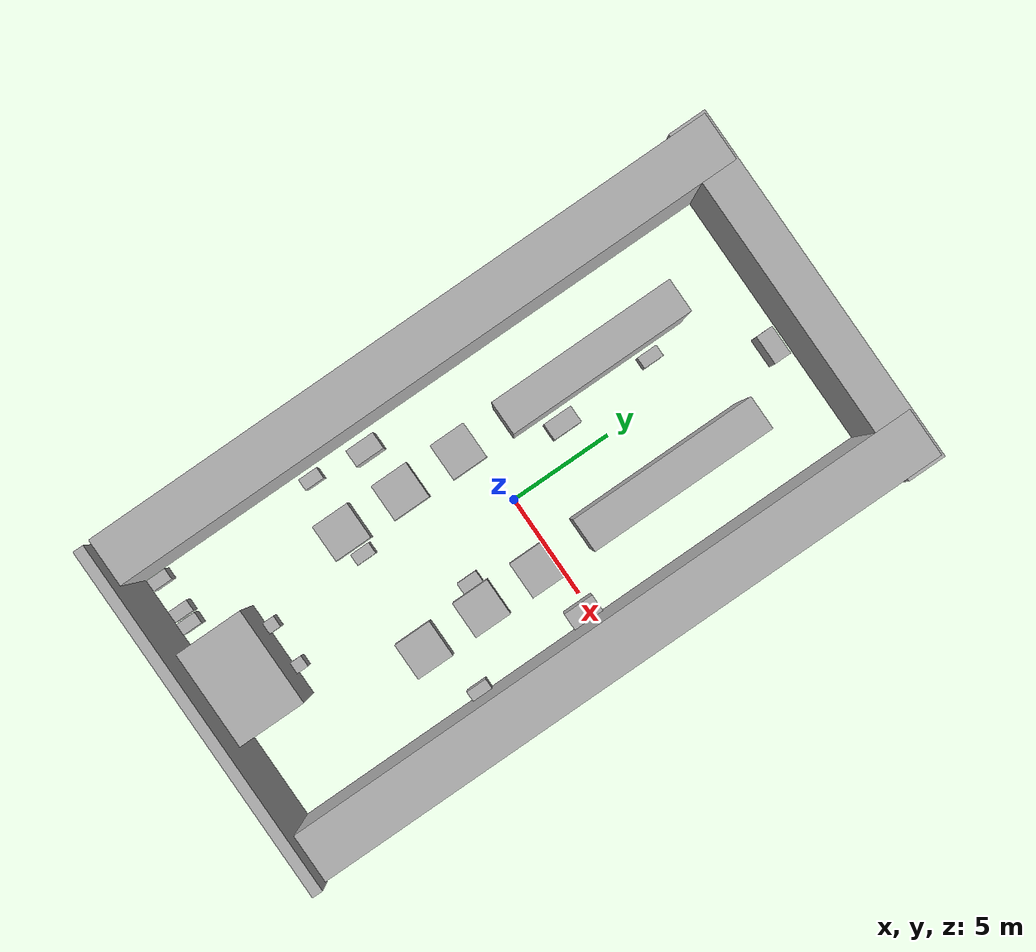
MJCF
<?xml version='1.0' encoding='utf-8'?>
<mujoco><worldbody><body name="Cube" pos="-3.106424331665039 -0.7924083471298218 0.42893028259277344"><geom type="box" size="0.9045870900154114 0.8800781965255737 0.40987831354141235" rgba="0.7 0.7 0.7 1" /></body><body name="Cube.001" pos="-3.106424331665039 -3.8511314392089844 0.4721049666404724"><geom type="box" size="0.9045870900154114 0.9166849255561829 0.42239314317703247" rgba="0.7 0.7 0.7 1" /></body><body name="Cube.002" pos="-1.5314898490905762 3.5964272022247314 0.6105251312255859"><geom type="box" size="0.41156280040740967 0.7077391743659973 0.5750482678413391" rgba="0.7 0.7 0.7 1" /></body><body name="Cube.003" pos="-3.030224323272705 5.969125747680664 1.7050747871398926"><geom type="box" size="0.8013579249382019 4.457285404205322 1.6607320308685303" rgba="0.7 0.7 0.7 1" /></body><body name="Cube.004" pos="-3.106424331665039 -6.949313163757324 0.4721049666404724"><geom type="box" size="0.9045870900154114 0.9166849255561829 0.42239314317703247" rgba="0.7 0.7 0.7 1" /></body><body name="Cube.005" pos="-1.5314898490905762 3.5964272022247314 0.6105251312255859"><geom type="box" size="0.41156280040740967 0.7077391743659973 0.5750482678413391" rgba="0.7 0.7 0.7 1" /></body><body name="Cube.006" pos="3.073184013366699 -3.8511314392089844 0.4721049666404724"><geom type="box" size="0.9045870900154114 0.9166849255561829 0.42239314317703247" rgba="0.7 0.7 0.7 1" /></body><body name="Cube.007" pos="3.073184013366699 -0.8387794494628906 0.4721049666404724"><geom type="box" size="0.9045870900154114 0.9166849255561829 0.42239314317703247" rgba="0.7 0.7 0.7 1" /></body><body name="Cube.008" pos="2.852900981903076 5.969125747680664 1.7050747871398926"><geom type="box" size="0.8013579249382019 4.457285404205322 1.6607320308685303" rgba="0.7 0.7 0.7 1" /></body><body name="Cube.009" pos="3.1343226432800293 -6.9332804679870605 0.4721049666404724"><geom type="box" size="0.9045870900154114 0.9166849255561829 0.42239314317703247" rgba="0.7 0.7 0.7 1" /></body><body name="Cube.010" pos="-1.8045388460159302 -6.743202209472656 0.3760989308357239"><geom type="box" size="0.2801657021045685 0.47854650020599365 0.33225446939468384" rgba="0.7 0.7 0.7 1" /></body><body name="Cube.011" pos="1.8613835573196411 -3.630113124847412 0.3760989308357239"><geom type="box" size="0.2801657021045685 0.5011858344078064 0.33225446939468384" rgba="0.7 0.7 0.7 1" /></body><body name="Cube.012" pos="-7.463425159454346 0.08257737755775452 1.7050747871398926"><geom type="box" size="1.1521168947219849 15.422843933105469 1.6607320308685303" rgba="0.7 0.7 0.7 1" /></body><body name="Cube.013" pos="7.349668979644775 0.08257737755775452 1.7050747871398926"><geom type="box" size="1.1521168947219849 15.422843933105469 1.6607320308685303" rgba="0.7 0.7 0.7 1" /></body><body name="Cube.014" pos="-5.774576187133789 -6.743202209472656 0.3760989308357239"><geom type="box" size="0.2801657021045685 0.47854650020599365 0.33225446939468384" rgba="0.7 0.7 0.7 1" /></body><body name="Cube.015" pos="-5.449253082275391 -4.062647819519043 0.6105251312255859"><geom type="box" size="0.41156280040740967 0.7077391743659973 0.5750482678413391" rgba="0.7 0.7 0.7 1" /></body><body name="Cube.016" pos="-0.05406169220805168 14.68520450592041 1.7050747871398926"><geom type="box" size="8.684910774230957 0.9048177003860474 1.6607320308685303" rgba="0.7 0.7 0.7 1" /></body><body name="Cube.017" pos="-1.743322491645813 8.411394119262695 0.3760989308357239"><geom type="box" size="0.2801657021045685 0.5011858344078064 0.33225446939468384" rgba="0.7 0.7 0.7 1" /></body><body name="Cube.018" pos="0.883574903011322 12.980020523071289 0.6105251312255859"><geom type="box" size="0.7099999785423279 0.4115000069141388 0.5750499963760376" rgba="0.7 0.7 0.7 1" /></body><body name="Cube.019" pos="5.692628860473633 -0.30861175060272217 0.6105251312255859"><geom type="box" size="0.41156280040740967 0.7387431263923645 0.5750482678413391" rgba="0.7 0.7 0.7 1" /></body><body name="Cube.020" pos="5.975793361663818 -5.958512783050537 0.3760989308357239"><geom type="box" size="0.2801657021045685 0.5011858344078064 0.33225446939468384" rgba="0.7 0.7 0.7 1" /></body><body name="Cube.021" pos="-0.3739904761314392 -14.000730514526367 1.2047615051269531"><geom type="box" size="2.3593766689300537 1.8904708623886108 1.2298567295074463" rgba="0.7 0.7 0.7 1" /></body><body name="Cube.022" pos="-3.6213858127593994 -14.691954612731934 0.3760989308357239"><geom type="box" size="0.2801657021045685 0.47854650020599365 0.33225446939468384" rgba="0.7 0.7 0.7 1" /></body><body name="Cube.023" pos="-4.267861843109131 -14.6773681640625 0.3760989308357239"><geom type="box" size="0.2801657021045685 0.47854650020599365 0.33225446939468384" rgba="0.7 0.7 0.7 1" /></body><body name="Cube.024" pos="-5.922451972961426 -14.6773681640625 0.3760989308357239"><geom type="box" size="0.2801657021045685 0.47854650020599365 0.33225446939468384" rgba="0.7 0.7 0.7 1" /></body><body name="Cube.025" pos="-1.5316914319992065 -11.773341178894043 0.3760989308357239"><geom type="box" size="0.2801657021045685 0.2882898151874542 0.33225446939468384" rgba="0.7 0.7 0.7 1" /></body><body name="Cube.026" pos="0.5700405836105347 -11.773341178894043 0.3760989308357239"><geom type="box" size="0.2801657021045685 0.2882898151874542 0.33225446939468384" rgba="0.7 0.7 0.7 1" /></body><body name="Cube.027" pos="0.08920285105705261 -15.628510475158691 2.0739989280700684"><geom type="box" size="8.508170127868652 0.24924148619174957 2.092756748199463" rgba="0.7 0.7 0.7 1" /></body></worldbody></mujoco>
